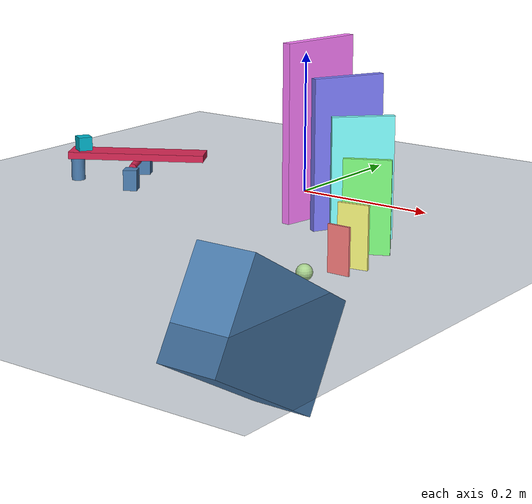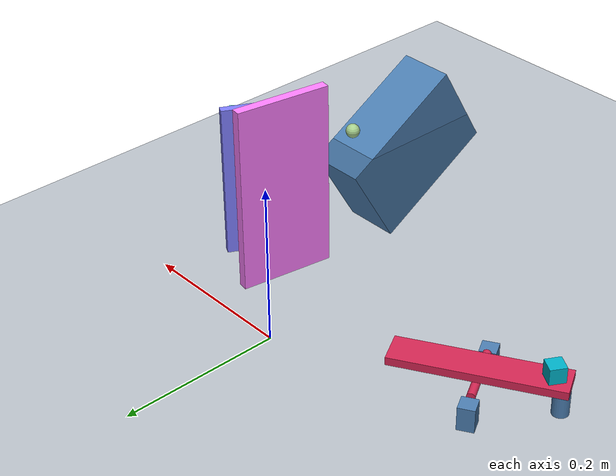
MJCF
<mujoco>
    <asset>
        <texture type="skybox" builtin="gradient" rgb1=".3 .5 .7" rgb2="0 0 0"
                    width="32" height="512"/>
        <texture name="grid" type="2d" builtin="checker" rgb1=".1 .2 .3" rgb2=".2 .3 .4"
                    width="512" height="512"/>
        <material name="grid" texture="grid" texrepeat="2 2" texuniform="true" reflectance=".2"/>
    </asset>

    <statistic meansize=".01"/>

    <visual>
        <global offheight="2160" offwidth="3840"/>
        <quality offsamples="8"/>
    </visual>

    <default>
        <geom type="box" solref=".005 1"/>
        <default class="static">
            <geom rgba=".3 .5 .7 1"/>
        </default>
    </default>

    <option timestep="5e-4"/>

    <worldbody>
        <light pos=".3 -.3 .8" mode="trackcom" diffuse="1 1 1" specular=".3 .3 .3"/>
        <light pos="0 -.3 .4" mode="targetbodycom" target="box" diffuse=".8 .8 .8" specular=".3 .3 .3"/>
        <geom name="floor" type="plane" size="3 3 .01" pos="-0.025 -0.295  0" material="grid"/>
        <geom name="ramp" pos=".25 -.45 -.03" size=".04 .1 .07" euler="-30 0 0" class="static"/>
        <camera name="top" pos="-0.37 -0.78 0.49" xyaxes="0.78 -0.63 0 0.27 0.33 0.9"/>

        <body name="ball" pos=".26 -.37 .02">
            <freejoint name="ball"/>
            <geom name="ball" type="sphere" size=".01" rgba=".65 .81 .55 1"/>
        </body>

        <body pos=".26 -.3 .03" euler="0 0 -90.0">
            <freejoint/>
            <geom size=".0015 .015 .03" rgba="1 .5 .5 1"/>
        </body>

        <body pos=".26 -.27 .04" euler="0 0 -81.0">
            <freejoint/>
            <geom size=".002 .02 .04" rgba="1 1 .5 1"/>
        </body>

        <body pos=".24 -.21 .06" euler="0 0 -63">
            <freejoint/>
            <geom size=".003 .03 .06" rgba=".5 1 .5 1"/>
        </body>

        <body pos=".2 -.16 .08" euler="0 0 -45">
            <freejoint/>
            <geom size=".004 .04 .08" rgba=".5 1 1 1"/>
        </body>

        <body pos=".15 -.12 .1" euler="0 0 -27.0">
            <freejoint/>
            <geom size=".005 .05 .1" rgba=".5 .5 1 1"/>
        </body>

        <body pos=".09 -.1 .12" euler="0 0 -9.0">
            <freejoint/>
            <geom size=".006 .06 .12" rgba="1 .5 1 1"/>
        </body>

        <body name="sesaw_wrapper" pos="-.23 -.1 0" euler="0 0 30">
            <geom size=".01 .01 .015" pos="0  .05 .015" class="static"/>
            <geom size=".01 .01 .015" pos="0 -.05 .015" class="static"/>
            <geom type="cylinder" size=".01 .0175" pos="-.09 0 .0175" class="static"/>
            <body name="sesaw" pos="0 0 .03">
                <joint axis="0 1 0"/>
                <geom type="cylinder" size=".005 .039" zaxis="0 1 0" rgba=".84 .15 .33 1"/>
                <geom size=".1 .02 .005" pos="0 0 .01" rgba=".84 .15 .33 1"/>
            </body>
        </body>

        <body name="box" pos="-.3 -.14 .05501" euler="0 0 -30">
            <freejoint name="box"/>
            <geom name="box" size=".01 .01 .01" rgba=" .0 .7 .79 1"/>
        </body>

    </worldbody>
</mujoco>
